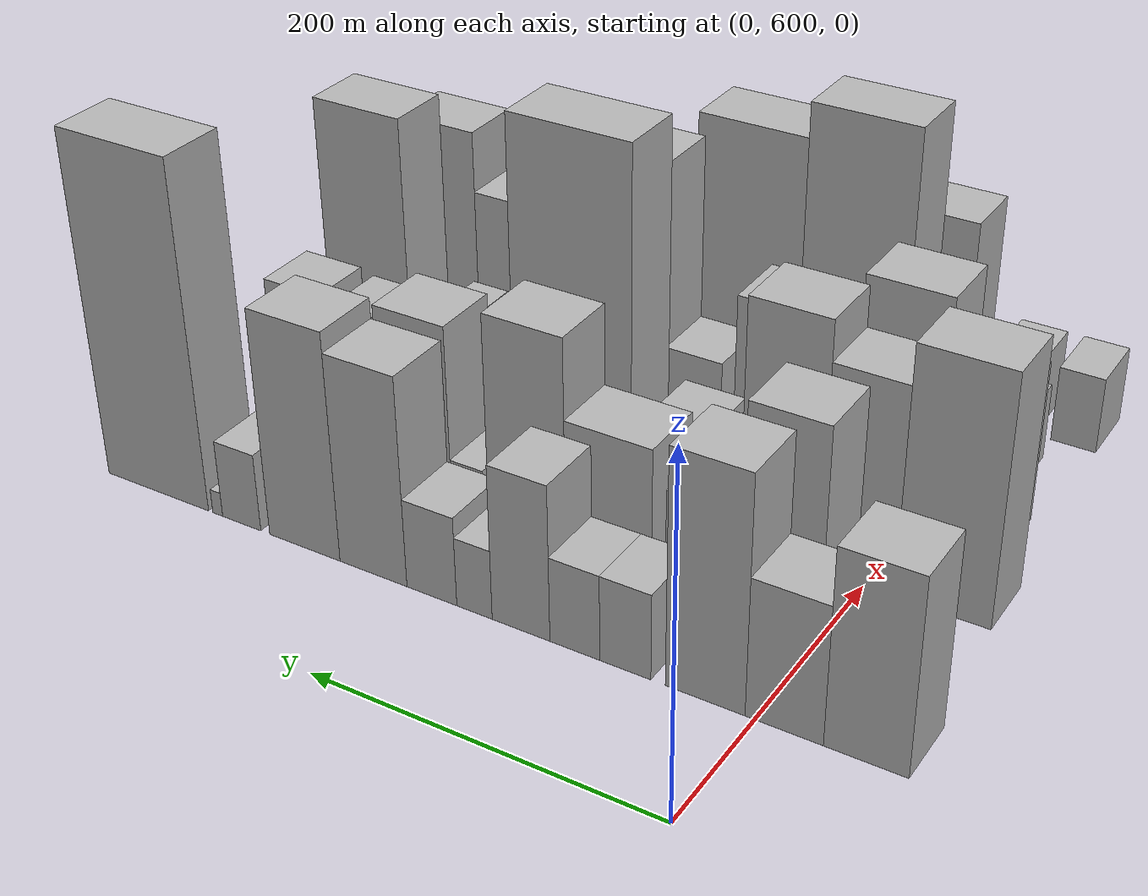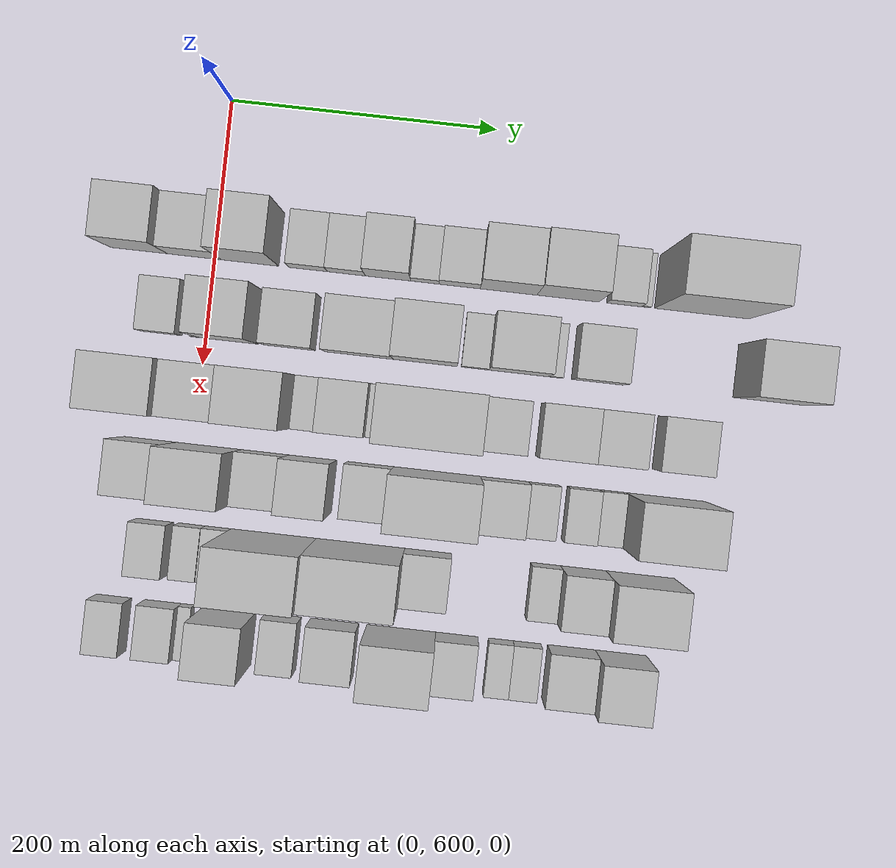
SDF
<sdf version="1.6">
 <world name="default">
  <model name="building_42">
   <static>1</static>
   <pose>100.0000 543.0667 0 0.000000 0.000000 0.000000</pose>
   <link name="link">
    <pose>0 0 57.00 0 0 0</pose>
    <collision name="collision"><geometry><box><size>40.0000 43.0736 114.0000</size></box></geometry></collision>
    <visual name="visual">
     <cast_shadows>0</cast_shadows>
     <geometry><box><size>40.0000 43.0736 114.0000</size></box></geometry>
     <material>
      <script>
       <uri>model://HANNAS_wall/materials/scripts</uri>
       <uri>model://HANNAS_wall/materials/textures</uri>
       <name>vrc/HANNAS_wall</name>
      </script>
     </material>
    </visual>
   </link>
  </model>
  <model name="building_43">
   <static>1</static>
   <pose>100.0000 584.9987 0 0.000000 0.000000 0.000000</pose>
   <link name="link">
    <pose>0 0 40.50 0 0 0</pose>
    <collision name="collision"><geometry><box><size>40.0000 40.7904 81.0000</size></box></geometry></collision>
    <visual name="visual">
     <cast_shadows>0</cast_shadows>
     <geometry><box><size>40.0000 40.7904 81.0000</size></box></geometry>
     <material>
      <script>
       <uri>model://HANNAS_wall/materials/scripts</uri>
       <uri>model://HANNAS_wall/materials/textures</uri>
       <name>vrc/HANNAS_wall</name>
      </script>
     </material>
    </visual>
   </link>
  </model>
  <model name="building_44">
   <static>1</static>
   <pose>100.0000 626.9853 0 0.000000 0.000000 0.000000</pose>
   <link name="link">
    <pose>0 0 69.00 0 0 0</pose>
    <collision name="collision"><geometry><box><size>40.0000 43.1828 138.0000</size></box></geometry></collision>
    <visual name="visual">
     <cast_shadows>0</cast_shadows>
     <geometry><box><size>40.0000 43.1828 138.0000</size></box></geometry>
     <material>
      <script>
       <uri>model://HANNAS_wall/materials/scripts</uri>
       <uri>model://HANNAS_wall/materials/textures</uri>
       <name>vrc/HANNAS_wall</name>
      </script>
     </material>
    </visual>
   </link>
  </model>
  <model name="building_45">
   <static>1</static>
   <pose>100.0000 670.9746 0 0.000000 0.000000 0.000000</pose>
   <link name="link">
    <pose>0 0 25.50 0 0 0</pose>
    <collision name="collision"><geometry><box><size>40.0000 28.7959 51.0000</size></box></geometry></collision>
    <visual name="visual">
     <cast_shadows>0</cast_shadows>
     <geometry><box><size>40.0000 28.7959 51.0000</size></box></geometry>
     <material>
      <script>
       <uri>model://HANNAS_wall/materials/scripts</uri>
       <uri>model://HANNAS_wall/materials/textures</uri>
       <name>vrc/HANNAS_wall</name>
      </script>
     </material>
    </visual>
   </link>
  </model>
  <model name="building_46">
   <static>1</static>
   <pose>100.0000 699.7390 0 0.000000 0.000000 0.000000</pose>
   <link name="link">
    <pose>0 0 25.50 0 0 0</pose>
    <collision name="collision"><geometry><box><size>40.0000 28.7329 51.0000</size></box></geometry></collision>
    <visual name="visual">
     <cast_shadows>0</cast_shadows>
     <geometry><box><size>40.0000 28.7329 51.0000</size></box></geometry>
     <material>
      <script>
       <uri>model://HANNAS_wall/materials/scripts</uri>
       <uri>model://HANNAS_wall/materials/textures</uri>
       <name>vrc/HANNAS_wall</name>
      </script>
     </material>
    </visual>
   </link>
  </model>
  <model name="building_47">
   <static>1</static>
   <pose>100.0000 731.2139 0 0.000000 0.000000 0.000000</pose>
   <link name="link">
    <pose>0 0 46.50 0 0 0</pose>
    <collision name="collision"><geometry><box><size>40.0000 34.2169 93.0000</size></box></geometry></collision>
    <visual name="visual">
     <cast_shadows>0</cast_shadows>
     <geometry><box><size>40.0000 34.2169 93.0000</size></box></geometry>
     <material>
      <script>
       <uri>model://HANNAS_wall/materials/scripts</uri>
       <uri>model://HANNAS_wall/materials/textures</uri>
       <name>vrc/HANNAS_wall</name>
      </script>
     </material>
    </visual>
   </link>
  </model>
  <model name="building_48">
   <static>1</static>
   <pose>100.0000 759.0580 0 0.000000 0.000000 0.000000</pose>
   <link name="link">
    <pose>0 0 21.00 0 0 0</pose>
    <collision name="collision"><geometry><box><size>40.0000 21.4712 42.0000</size></box></geometry></collision>
    <visual name="visual">
     <cast_shadows>0</cast_shadows>
     <geometry><box><size>40.0000 21.4712 42.0000</size></box></geometry>
     <material>
      <script>
       <uri>model://HANNAS_wall/materials/scripts</uri>
       <uri>model://HANNAS_wall/materials/textures</uri>
       <name>vrc/HANNAS_wall</name>
      </script>
     </material>
    </visual>
   </link>
  </model>
  <model name="building_49">
   <static>1</static>
   <pose>100.0000 785.2733 0 0.000000 0.000000 0.000000</pose>
   <link name="link">
    <pose>0 0 27.00 0 0 0</pose>
    <collision name="collision"><geometry><box><size>40.0000 30.9595 54.0000</size></box></geometry></collision>
    <visual name="visual">
     <cast_shadows>0</cast_shadows>
     <geometry><box><size>40.0000 30.9595 54.0000</size></box></geometry>
     <material>
      <script>
       <uri>model://HANNAS_wall/materials/scripts</uri>
       <uri>model://HANNAS_wall/materials/textures</uri>
       <name>vrc/HANNAS_wall</name>
      </script>
     </material>
    </visual>
   </link>
  </model>
  <model name="building_50">
   <static>1</static>
   <pose>100.0000 822.1790 0 0.000000 0.000000 0.000000</pose>
   <link name="link">
    <pose>0 0 63.00 0 0 0</pose>
    <collision name="collision"><geometry><box><size>40.0000 42.8519 126.0000</size></box></geometry></collision>
    <visual name="visual">
     <cast_shadows>0</cast_shadows>
     <geometry><box><size>40.0000 42.8519 126.0000</size></box></geometry>
     <material>
      <script>
       <uri>model://HANNAS_wall/materials/scripts</uri>
       <uri>model://HANNAS_wall/materials/textures</uri>
       <name>vrc/HANNAS_wall</name>
      </script>
     </material>
    </visual>
   </link>
  </model>
  <model name="building_51">
   <static>1</static>
   <pose>100.0000 866.9608 0 0.000000 0.000000 0.000000</pose>
   <link name="link">
    <pose>0 0 69.00 0 0 0</pose>
    <collision name="collision"><geometry><box><size>40.0000 46.7116 138.0000</size></box></geometry></collision>
    <visual name="visual">
     <cast_shadows>0</cast_shadows>
     <geometry><box><size>40.0000 46.7116 138.0000</size></box></geometry>
     <material>
      <script>
       <uri>model://HANNAS_wall/materials/scripts</uri>
       <uri>model://HANNAS_wall/materials/textures</uri>
       <name>vrc/HANNAS_wall</name>
      </script>
     </material>
    </visual>
   </link>
  </model>
  <model name="building_52">
   <static>1</static>
   <pose>100.0000 909.4379 0 0.000000 0.000000 0.000000</pose>
   <link name="link">
    <pose>0 0 24.00 0 0 0</pose>
    <collision name="collision"><geometry><box><size>40.0000 26.2428 48.0000</size></box></geometry></collision>
    <visual name="visual">
     <cast_shadows>0</cast_shadows>
     <geometry><box><size>40.0000 26.2428 48.0000</size></box></geometry>
     <material>
      <script>
       <uri>model://HANNAS_wall/materials/scripts</uri>
       <uri>model://HANNAS_wall/materials/textures</uri>
       <name>vrc/HANNAS_wall</name>
      </script>
     </material>
    </visual>
   </link>
  </model>
  <model name="building_53">
   <static>1</static>
   <pose>100.0000 925.9693 0 0.000000 0.000000 0.000000</pose>
   <link name="link">
    <pose>0 0 7.50 0 0 0</pose>
    <collision name="collision"><geometry><box><size>40.0000 6.8199 15.0000</size></box></geometry></collision>
    <visual name="visual">
     <cast_shadows>0</cast_shadows>
     <geometry><box><size>40.0000 6.8199 15.0000</size></box></geometry>
     <material>
      <script>
       <uri>model://HANNAS_wall/materials/scripts</uri>
       <uri>model://HANNAS_wall/materials/textures</uri>
       <name>vrc/HANNAS_wall</name>
      </script>
     </material>
    </visual>
   </link>
  </model>
  <model name="building_54">
   <static>1</static>
   <pose>100.0000 968.1452 0 0.000000 0.000000 0.000000</pose>
   <link name="link">
    <pose>0 0 105.00 0 0 0</pose>
    <collision name="collision"><geometry><box><size>40.0000 71.5319 210.0000</size></box></geometry></collision>
    <visual name="visual">
     <cast_shadows>0</cast_shadows>
     <geometry><box><size>40.0000 71.5319 210.0000</size></box></geometry>
     <material>
      <script>
       <uri>model://HANNAS_wall/materials/scripts</uri>
       <uri>model://HANNAS_wall/materials/textures</uri>
       <name>vrc/HANNAS_wall</name>
      </script>
     </material>
    </visual>
   </link>
  </model>
  <model name="building_101">
   <static>1</static>
   <pose>160.0000 567.4857 0 0.000000 0.000000 0.000000</pose>
   <link name="link">
    <pose>0 0 25.50 0 0 0</pose>
    <collision name="collision"><geometry><box><size>40.0000 29.9736 51.0000</size></box></geometry></collision>
    <visual name="visual">
     <cast_shadows>0</cast_shadows>
     <geometry><box><size>40.0000 29.9736 51.0000</size></box></geometry>
     <material>
      <script>
       <uri>model://HANNAS_wall/materials/scripts</uri>
       <uri>model://HANNAS_wall/materials/textures</uri>
       <name>vrc/HANNAS_wall</name>
      </script>
     </material>
    </visual>
   </link>
  </model>
  <model name="building_102">
   <static>1</static>
   <pose>160.0000 592.8338 0 0.000000 0.000000 0.000000</pose>
   <link name="link">
    <pose>0 0 7.50 0 0 0</pose>
    <collision name="collision"><geometry><box><size>40.0000 6.7226 15.0000</size></box></geometry></collision>
    <visual name="visual">
     <cast_shadows>0</cast_shadows>
     <geometry><box><size>40.0000 6.7226 15.0000</size></box></geometry>
     <material>
      <script>
       <uri>model://HANNAS_wall/materials/scripts</uri>
       <uri>model://HANNAS_wall/materials/textures</uri>
       <name>vrc/HANNAS_wall</name>
      </script>
     </material>
    </visual>
   </link>
  </model>
  <model name="building_103">
   <static>1</static>
   <pose>160.0000 618.1269 0 0.000000 0.000000 0.000000</pose>
   <link name="link">
    <pose>0 0 66.00 0 0 0</pose>
    <collision name="collision"><geometry><box><size>40.0000 43.8638 132.0000</size></box></geometry></collision>
    <visual name="visual">
     <cast_shadows>0</cast_shadows>
     <geometry><box><size>40.0000 43.8638 132.0000</size></box></geometry>
     <material>
      <script>
       <uri>model://HANNAS_wall/materials/scripts</uri>
       <uri>model://HANNAS_wall/materials/textures</uri>
       <name>vrc/HANNAS_wall</name>
      </script>
     </material>
    </visual>
   </link>
  </model>
  <model name="building_104">
   <static>1</static>
   <pose>160.0000 663.4706 0 0.000000 0.000000 0.000000</pose>
   <link name="link">
    <pose>0 0 33.00 0 0 0</pose>
    <collision name="collision"><geometry><box><size>40.0000 38.8237 66.0000</size></box></geometry></collision>
    <visual name="visual">
     <cast_shadows>0</cast_shadows>
     <geometry><box><size>40.0000 38.8237 66.0000</size></box></geometry>
     <material>
      <script>
       <uri>model://HANNAS_wall/materials/scripts</uri>
       <uri>model://HANNAS_wall/materials/textures</uri>
       <name>vrc/HANNAS_wall</name>
      </script>
     </material>
    </visual>
   </link>
  </model>
  <model name="building_105">
   <static>1</static>
   <pose>160.0000 716.5705 0 0.000000 0.000000 0.000000</pose>
   <link name="link">
    <pose>0 0 43.50 0 0 0</pose>
    <collision name="collision"><geometry><box><size>40.0000 51.3761 87.0000</size></box></geometry></collision>
    <visual name="visual">
     <cast_shadows>0</cast_shadows>
     <geometry><box><size>40.0000 51.3761 87.0000</size></box></geometry>
     <material>
      <script>
       <uri>model://HANNAS_wall/materials/scripts</uri>
       <uri>model://HANNAS_wall/materials/textures</uri>
       <name>vrc/HANNAS_wall</name>
      </script>
     </material>
    </visual>
   </link>
  </model>
  <model name="building_106">
   <static>1</static>
   <pose>160.0000 766.1731 0 0.000000 0.000000 0.000000</pose>
   <link name="link">
    <pose>0 0 67.50 0 0 0</pose>
    <collision name="collision"><geometry><box><size>40.0000 47.8291 135.0000</size></box></geometry></collision>
    <visual name="visual">
     <cast_shadows>0</cast_shadows>
     <geometry><box><size>40.0000 47.8291 135.0000</size></box></geometry>
     <material>
      <script>
       <uri>model://HANNAS_wall/materials/scripts</uri>
       <uri>model://HANNAS_wall/materials/textures</uri>
       <name>vrc/HANNAS_wall</name>
      </script>
     </material>
    </visual>
   </link>
  </model>
  <model name="building_107">
   <static>1</static>
   <pose>160.0000 803.4157 0 0.000000 0.000000 0.000000</pose>
   <link name="link">
    <pose>0 0 19.50 0 0 0</pose>
    <collision name="collision"><geometry><box><size>40.0000 20.6560 39.0000</size></box></geometry></collision>
    <visual name="visual">
     <cast_shadows>0</cast_shadows>
     <geometry><box><size>40.0000 20.6560 39.0000</size></box></geometry>
     <material>
      <script>
       <uri>model://HANNAS_wall/materials/scripts</uri>
       <uri>model://HANNAS_wall/materials/textures</uri>
       <name>vrc/HANNAS_wall</name>
      </script>
     </material>
    </visual>
   </link>
  </model>
  <model name="building_108">
   <static>1</static>
   <pose>160.0000 836.0244 0 0.000000 0.000000 0.000000</pose>
   <link name="link">
    <pose>0 0 60.00 0 0 0</pose>
    <collision name="collision"><geometry><box><size>40.0000 44.5614 120.0000</size></box></geometry></collision>
    <visual name="visual">
     <cast_shadows>0</cast_shadows>
     <geometry><box><size>40.0000 44.5614 120.0000</size></box></geometry>
     <material>
      <script>
       <uri>model://HANNAS_wall/materials/scripts</uri>
       <uri>model://HANNAS_wall/materials/textures</uri>
       <name>vrc/HANNAS_wall</name>
      </script>
     </material>
    </visual>
   </link>
  </model>
  <model name="building_109">
   <static>1</static>
   <pose>160.0000 863.7931 0 0.000000 0.000000 0.000000</pose>
   <link name="link">
    <pose>0 0 13.50 0 0 0</pose>
    <collision name="collision"><geometry><box><size>40.0000 10.9760 27.0000</size></box></geometry></collision>
    <visual name="visual">
     <cast_shadows>0</cast_shadows>
     <geometry><box><size>40.0000 10.9760 27.0000</size></box></geometry>
     <material>
      <script>
       <uri>model://HANNAS_wall/materials/scripts</uri>
       <uri>model://HANNAS_wall/materials/textures</uri>
       <name>vrc/HANNAS_wall</name>
      </script>
     </material>
    </visual>
   </link>
  </model>
  <model name="building_110">
   <static>1</static>
   <pose>160.0000 895.8413 0 0.000000 0.000000 0.000000</pose>
   <link name="link">
    <pose>0 0 36.00 0 0 0</pose>
    <collision name="collision"><geometry><box><size>40.0000 39.1203 72.0000</size></box></geometry></collision>
    <visual name="visual">
     <cast_shadows>0</cast_shadows>
     <geometry><box><size>40.0000 39.1203 72.0000</size></box></geometry>
     <material>
      <script>
       <uri>model://HANNAS_wall/materials/scripts</uri>
       <uri>model://HANNAS_wall/materials/textures</uri>
       <name>vrc/HANNAS_wall</name>
      </script>
     </material>
    </visual>
   </link>
  </model>
  <model name="building_111">
   <static>1</static>
   <pose>160.0000 1023.8019 0 0.000000 0.000000 0.000000</pose>
   <link name="link">
    <pose>0 0 70.50 0 0 0</pose>
    <collision name="collision"><geometry><box><size>40.0000 50.9337 141.0000</size></box></geometry></collision>
    <visual name="visual">
     <cast_shadows>0</cast_shadows>
     <geometry><box><size>40.0000 50.9337 141.0000</size></box></geometry>
     <material>
      <script>
       <uri>model://HANNAS_wall/materials/scripts</uri>
       <uri>model://HANNAS_wall/materials/textures</uri>
       <name>vrc/HANNAS_wall</name>
      </script>
     </material>
    </visual>
   </link>
  </model>
  <model name="building_156">
   <static>1</static>
   <pose>220.0000 556.6716 0 0.000000 0.000000 0.000000</pose>
   <link name="link">
    <pose>0 0 75.00 0 0 0</pose>
    <collision name="collision"><geometry><box><size>40.0000 52.7930 150.0000</size></box></geometry></collision>
    <visual name="visual">
     <cast_shadows>0</cast_shadows>
     <geometry><box><size>40.0000 52.7930 150.0000</size></box></geometry>
     <material>
      <script>
       <uri>model://HANNAS_wall/materials/scripts</uri>
       <uri>model://HANNAS_wall/materials/textures</uri>
       <name>vrc/HANNAS_wall</name>
      </script>
     </material>
    </visual>
   </link>
  </model>
  <model name="building_157">
   <static>1</static>
   <pose>220.0000 604.1203 0 0.000000 0.000000 0.000000</pose>
   <link name="link">
    <pose>0 0 63.00 0 0 0</pose>
    <collision name="collision"><geometry><box><size>40.0000 42.1045 126.0000</size></box></geometry></collision>
    <visual name="visual">
     <cast_shadows>0</cast_shadows>
     <geometry><box><size>40.0000 42.1045 126.0000</size></box></geometry>
     <material>
      <script>
       <uri>model://HANNAS_wall/materials/scripts</uri>
       <uri>model://HANNAS_wall/materials/textures</uri>
       <name>vrc/HANNAS_wall</name>
      </script>
     </material>
    </visual>
   </link>
  </model>
  <model name="building_158">
   <static>1</static>
   <pose>220.0000 648.6681 0 0.000000 0.000000 0.000000</pose>
   <link name="link">
    <pose>0 0 75.00 0 0 0</pose>
    <collision name="collision"><geometry><box><size>40.0000 46.9909 150.0000</size></box></geometry></collision>
    <visual name="visual">
     <cast_shadows>0</cast_shadows>
     <geometry><box><size>40.0000 46.9909 150.0000</size></box></geometry>
     <material>
      <script>
       <uri>model://HANNAS_wall/materials/scripts</uri>
       <uri>model://HANNAS_wall/materials/textures</uri>
       <name>vrc/HANNAS_wall</name>
      </script>
     </material>
    </visual>
   </link>
  </model>
  <model name="building_159">
   <static>1</static>
   <pose>220.0000 681.7142 0 0.000000 0.000000 0.000000</pose>
   <link name="link">
    <pose>0 0 18.00 0 0 0</pose>
    <collision name="collision"><geometry><box><size>40.0000 19.1013 36.0000</size></box></geometry></collision>
    <visual name="visual">
     <cast_shadows>0</cast_shadows>
     <geometry><box><size>40.0000 19.1013 36.0000</size></box></geometry>
     <material>
      <script>
       <uri>model://HANNAS_wall/materials/scripts</uri>
       <uri>model://HANNAS_wall/materials/textures</uri>
       <name>vrc/HANNAS_wall</name>
      </script>
     </material>
    </visual>
   </link>
  </model>
  <model name="building_160">
   <static>1</static>
   <pose>220.0000 709.5072 0 0.000000 0.000000 0.000000</pose>
   <link name="link">
    <pose>0 0 31.50 0 0 0</pose>
    <collision name="collision"><geometry><box><size>40.0000 36.4847 63.0000</size></box></geometry></collision>
    <visual name="visual">
     <cast_shadows>0</cast_shadows>
     <geometry><box><size>40.0000 36.4847 63.0000</size></box></geometry>
     <material>
      <script>
       <uri>model://HANNAS_wall/materials/scripts</uri>
       <uri>model://HANNAS_wall/materials/textures</uri>
       <name>vrc/HANNAS_wall</name>
      </script>
     </material>
    </visual>
   </link>
  </model>
  <model name="building_161">
   <static>1</static>
   <pose>220.0000 733.0010 0 0.000000 0.000000 0.000000</pose>
   <link name="link">
    <pose>0 0 12.00 0 0 0</pose>
    <collision name="collision"><geometry><box><size>40.0000 10.5028 24.0000</size></box></geometry></collision>
    <visual name="visual">
     <cast_shadows>0</cast_shadows>
     <geometry><box><size>40.0000 10.5028 24.0000</size></box></geometry>
     <material>
      <script>
       <uri>model://HANNAS_wall/materials/scripts</uri>
       <uri>model://HANNAS_wall/materials/textures</uri>
       <name>vrc/HANNAS_wall</name>
      </script>
     </material>
    </visual>
   </link>
  </model>
  <model name="building_162">
   <static>1</static>
   <pose>220.0000 775.4668 0 0.000000 0.000000 0.000000</pose>
   <link name="link">
    <pose>0 0 108.00 0 0 0</pose>
    <collision name="collision"><geometry><box><size>40.0000 74.4288 216.0000</size></box></geometry></collision>
    <visual name="visual">
     <cast_shadows>0</cast_shadows>
     <geometry><box><size>40.0000 74.4288 216.0000</size></box></geometry>
     <material>
      <script>
       <uri>model://HANNAS_wall/materials/scripts</uri>
       <uri>model://HANNAS_wall/materials/textures</uri>
       <name>vrc/HANNAS_wall</name>
      </script>
     </material>
    </visual>
   </link>
  </model>
  <model name="building_163">
   <static>1</static>
   <pose>220.0000 830.3093 0 0.000000 0.000000 0.000000</pose>
   <link name="link">
    <pose>0 0 30.00 0 0 0</pose>
    <collision name="collision"><geometry><box><size>40.0000 35.2562 60.0000</size></box></geometry></collision>
    <visual name="visual">
     <cast_shadows>0</cast_shadows>
     <geometry><box><size>40.0000 35.2562 60.0000</size></box></geometry>
     <material>
      <script>
       <uri>model://HANNAS_wall/materials/scripts</uri>
       <uri>model://HANNAS_wall/materials/textures</uri>
       <name>vrc/HANNAS_wall</name>
      </script>
     </material>
    </visual>
   </link>
  </model>
  <model name="building_164">
   <static>1</static>
   <pose>220.0000 877.0171 0 0.000000 0.000000 0.000000</pose>
   <link name="link">
    <pose>0 0 37.50 0 0 0</pose>
    <collision name="collision"><geometry><box><size>40.0000 42.1594 75.0000</size></box></geometry></collision>
    <visual name="visual">
     <cast_shadows>0</cast_shadows>
     <geometry><box><size>40.0000 42.1594 75.0000</size></box></geometry>
     <material>
      <script>
       <uri>model://HANNAS_wall/materials/scripts</uri>
       <uri>model://HANNAS_wall/materials/textures</uri>
       <name>vrc/HANNAS_wall</name>
      </script>
     </material>
    </visual>
   </link>
  </model>
  <model name="building_165">
   <static>1</static>
   <pose>220.0000 916.6066 0 0.000000 0.000000 0.000000</pose>
   <link name="link">
    <pose>0 0 34.50 0 0 0</pose>
    <collision name="collision"><geometry><box><size>40.0000 37.0196 69.0000</size></box></geometry></collision>
    <visual name="visual">
     <cast_shadows>0</cast_shadows>
     <geometry><box><size>40.0000 37.0196 69.0000</size></box></geometry>
     <material>
      <script>
       <uri>model://HANNAS_wall/materials/scripts</uri>
       <uri>model://HANNAS_wall/materials/textures</uri>
       <name>vrc/HANNAS_wall</name>
      </script>
     </material>
    </visual>
   </link>
  </model>
  <model name="building_166">
   <static>1</static>
   <pose>220.0000 963.9334 0 0.000000 0.000000 0.000000</pose>
   <link name="link">
    <pose>0 0 36.00 0 0 0</pose>
    <collision name="collision"><geometry><box><size>40.0000 39.6342 72.0000</size></box></geometry></collision>
    <visual name="visual">
     <cast_shadows>0</cast_shadows>
     <geometry><box><size>40.0000 39.6342 72.0000</size></box></geometry>
     <material>
      <script>
       <uri>model://HANNAS_wall/materials/scripts</uri>
       <uri>model://HANNAS_wall/materials/textures</uri>
       <name>vrc/HANNAS_wall</name>
      </script>
     </material>
    </visual>
   </link>
  </model>
  <model name="building_214">
   <static>1</static>
   <pose>280.0000 567.4271 0 0.000000 0.000000 0.000000</pose>
   <link name="link">
    <pose>0 0 49.50 0 0 0</pose>
    <collision name="collision"><geometry><box><size>40.0000 39.3766 99.0000</size></box></geometry></collision>
    <visual name="visual">
     <cast_shadows>0</cast_shadows>
     <geometry><box><size>40.0000 39.3766 99.0000</size></box></geometry>
     <material>
      <script>
       <uri>model://HANNAS_wall/materials/scripts</uri>
       <uri>model://HANNAS_wall/materials/textures</uri>
       <name>vrc/HANNAS_wall</name>
      </script>
     </material>
    </visual>
   </link>
  </model>
  <model name="building_215">
   <static>1</static>
   <pose>280.0000 611.7006 0 0.000000 0.000000 0.000000</pose>
   <link name="link">
    <pose>0 0 72.00 0 0 0</pose>
    <collision name="collision"><geometry><box><size>40.0000 49.1704 144.0000</size></box></geometry></collision>
    <visual name="visual">
     <cast_shadows>0</cast_shadows>
     <geometry><box><size>40.0000 49.1704 144.0000</size></box></geometry>
     <material>
      <script>
       <uri>model://HANNAS_wall/materials/scripts</uri>
       <uri>model://HANNAS_wall/materials/textures</uri>
       <name>vrc/HANNAS_wall</name>
      </script>
     </material>
    </visual>
   </link>
  </model>
  <model name="building_216">
   <static>1</static>
   <pose>280.0000 654.1823 0 0.000000 0.000000 0.000000</pose>
   <link name="link">
    <pose>0 0 33.00 0 0 0</pose>
    <collision name="collision"><geometry><box><size>40.0000 35.7930 66.0000</size></box></geometry></collision>
    <visual name="visual">
     <cast_shadows>0</cast_shadows>
     <geometry><box><size>40.0000 35.7930 66.0000</size></box></geometry>
     <material>
      <script>
       <uri>model://HANNAS_wall/materials/scripts</uri>
       <uri>model://HANNAS_wall/materials/textures</uri>
       <name>vrc/HANNAS_wall</name>
      </script>
     </material>
    </visual>
   </link>
  </model>
  <model name="building_217">
   <static>1</static>
   <pose>280.0000 690.1844 0 0.000000 0.000000 0.000000</pose>
   <link name="link">
    <pose>0 0 55.50 0 0 0</pose>
    <collision name="collision"><geometry><box><size>40.0000 36.2111 111.0000</size></box></geometry></collision>
    <visual name="visual">
     <cast_shadows>0</cast_shadows>
     <geometry><box><size>40.0000 36.2111 111.0000</size></box></geometry>
     <material>
      <script>
       <uri>model://HANNAS_wall/materials/scripts</uri>
       <uri>model://HANNAS_wall/materials/textures</uri>
       <name>vrc/HANNAS_wall</name>
      </script>
     </material>
    </visual>
   </link>
  </model>
  <model name="building_218">
   <static>1</static>
   <pose>280.0000 733.7836 0 0.000000 0.000000 0.000000</pose>
   <link name="link">
    <pose>0 0 33.00 0 0 0</pose>
    <collision name="collision"><geometry><box><size>40.0000 34.9873 66.0000</size></box></geometry></collision>
    <visual name="visual">
     <cast_shadows>0</cast_shadows>
     <geometry><box><size>40.0000 34.9873 66.0000</size></box></geometry>
     <material>
      <script>
       <uri>model://HANNAS_wall/materials/scripts</uri>
       <uri>model://HANNAS_wall/materials/textures</uri>
       <name>vrc/HANNAS_wall</name>
      </script>
     </material>
    </visual>
   </link>
  </model>
  <model name="building_219">
   <static>1</static>
   <pose>280.0000 783.9139 0 0.000000 0.000000 0.000000</pose>
   <link name="link">
    <pose>0 0 88.50 0 0 0</pose>
    <collision name="collision"><geometry><box><size>40.0000 65.2733 177.0000</size></box></geometry></collision>
    <visual name="visual">
     <cast_shadows>0</cast_shadows>
     <geometry><box><size>40.0000 65.2733 177.0000</size></box></geometry>
     <material>
      <script>
       <uri>model://HANNAS_wall/materials/scripts</uri>
       <uri>model://HANNAS_wall/materials/textures</uri>
       <name>vrc/HANNAS_wall</name>
      </script>
     </material>
    </visual>
   </link>
  </model>
  <model name="building_220">
   <static>1</static>
   <pose>280.0000 834.7248 0 0.000000 0.000000 0.000000</pose>
   <link name="link">
    <pose>0 0 34.50 0 0 0</pose>
    <collision name="collision"><geometry><box><size>40.0000 36.3485 69.0000</size></box></geometry></collision>
    <visual name="visual">
     <cast_shadows>0</cast_shadows>
     <geometry><box><size>40.0000 36.3485 69.0000</size></box></geometry>
     <material>
      <script>
       <uri>model://HANNAS_wall/materials/scripts</uri>
       <uri>model://HANNAS_wall/materials/textures</uri>
       <name>vrc/HANNAS_wall</name>
      </script>
     </material>
    </visual>
   </link>
  </model>
  <model name="building_221">
   <static>1</static>
   <pose>280.0000 864.4999 0 0.000000 0.000000 0.000000</pose>
   <link name="link">
    <pose>0 0 21.00 0 0 0</pose>
    <collision name="collision"><geometry><box><size>40.0000 23.2016 42.0000</size></box></geometry></collision>
    <visual name="visual">
     <cast_shadows>0</cast_shadows>
     <geometry><box><size>40.0000 23.2016 42.0000</size></box></geometry>
     <material>
      <script>
       <uri>model://HANNAS_wall/materials/scripts</uri>
       <uri>model://HANNAS_wall/materials/textures</uri>
       <name>vrc/HANNAS_wall</name>
      </script>
     </material>
    </visual>
   </link>
  </model>
  <model name="building_222">
   <static>1</static>
   <pose>280.0000 894.3371 0 0.000000 0.000000 0.000000</pose>
   <link name="link">
    <pose>0 0 22.50 0 0 0</pose>
    <collision name="collision"><geometry><box><size>40.0000 24.4728 45.0000</size></box></geometry></collision>
    <visual name="visual">
     <cast_shadows>0</cast_shadows>
     <geometry><box><size>40.0000 24.4728 45.0000</size></box></geometry>
     <material>
      <script>
       <uri>model://HANNAS_wall/materials/scripts</uri>
       <uri>model://HANNAS_wall/materials/textures</uri>
       <name>vrc/HANNAS_wall</name>
      </script>
     </material>
    </visual>
   </link>
  </model>
  <model name="building_223">
   <static>1</static>
   <pose>280.0000 916.3788 0 0.000000 0.000000 0.000000</pose>
   <link name="link">
    <pose>0 0 16.50 0 0 0</pose>
    <collision name="collision"><geometry><box><size>40.0000 19.6106 33.0000</size></box></geometry></collision>
    <visual name="visual">
     <cast_shadows>0</cast_shadows>
     <geometry><box><size>40.0000 19.6106 33.0000</size></box></geometry>
     <material>
      <script>
       <uri>model://HANNAS_wall/materials/scripts</uri>
       <uri>model://HANNAS_wall/materials/textures</uri>
       <name>vrc/HANNAS_wall</name>
      </script>
     </material>
    </visual>
   </link>
  </model>
  <model name="building_224">
   <static>1</static>
   <pose>280.0000 956.2109 0 0.000000 0.000000 0.000000</pose>
   <link name="link">
    <pose>0 0 81.00 0 0 0</pose>
    <collision name="collision"><geometry><box><size>40.0000 60.0537 162.0000</size></box></geometry></collision>
    <visual name="visual">
     <cast_shadows>0</cast_shadows>
     <geometry><box><size>40.0000 60.0537 162.0000</size></box></geometry>
     <material>
      <script>
       <uri>model://HANNAS_wall/materials/scripts</uri>
       <uri>model://HANNAS_wall/materials/textures</uri>
       <name>vrc/HANNAS_wall</name>
      </script>
     </material>
    </visual>
   </link>
  </model>
  <model name="building_276">
   <static>1</static>
   <pose>340.0000 577.5527 0 0.000000 0.000000 0.000000</pose>
   <link name="link">
    <pose>0 0 24.00 0 0 0</pose>
    <collision name="collision"><geometry><box><size>40.0000 27.7401 48.0000</size></box></geometry></collision>
    <visual name="visual">
     <cast_shadows>0</cast_shadows>
     <geometry><box><size>40.0000 27.7401 48.0000</size></box></geometry>
     <material>
      <script>
       <uri>model://HANNAS_wall/materials/scripts</uri>
       <uri>model://HANNAS_wall/materials/textures</uri>
       <name>vrc/HANNAS_wall</name>
      </script>
     </material>
    </visual>
   </link>
  </model>
  <model name="building_277">
   <static>1</static>
   <pose>340.0000 605.5652 0 0.000000 0.000000 0.000000</pose>
   <link name="link">
    <pose>0 0 18.00 0 0 0</pose>
    <collision name="collision"><geometry><box><size>40.0000 20.2848 36.0000</size></box></geometry></collision>
    <visual name="visual">
     <cast_shadows>0</cast_shadows>
     <geometry><box><size>40.0000 20.2848 36.0000</size></box></geometry>
     <material>
      <script>
       <uri>model://HANNAS_wall/materials/scripts</uri>
       <uri>model://HANNAS_wall/materials/textures</uri>
       <name>vrc/HANNAS_wall</name>
      </script>
     </material>
    </visual>
   </link>
  </model>
  <model name="building_278">
   <static>1</static>
   <pose>340.0000 625.4072 0 0.000000 0.000000 0.000000</pose>
   <link name="link">
    <pose>0 0 16.50 0 0 0</pose>
    <collision name="collision"><geometry><box><size>40.0000 19.3990 33.0000</size></box></geometry></collision>
    <visual name="visual">
     <cast_shadows>0</cast_shadows>
     <geometry><box><size>40.0000 19.3990 33.0000</size></box></geometry>
     <material>
      <script>
       <uri>model://HANNAS_wall/materials/scripts</uri>
       <uri>model://HANNAS_wall/materials/textures</uri>
       <name>vrc/HANNAS_wall</name>
      </script>
     </material>
    </visual>
   </link>
  </model>
  <model name="building_279">
   <static>1</static>
   <pose>340.0000 667.3783 0 0.000000 0.000000 0.000000</pose>
   <link name="link">
    <pose>0 0 100.50 0 0 0</pose>
    <collision name="collision"><geometry><box><size>40.0000 64.5432 201.0000</size></box></geometry></collision>
    <visual name="visual">
     <cast_shadows>0</cast_shadows>
     <geometry><box><size>40.0000 64.5432 201.0000</size></box></geometry>
     <material>
      <script>
       <uri>model://HANNAS_wall/materials/scripts</uri>
       <uri>model://HANNAS_wall/materials/textures</uri>
       <name>vrc/HANNAS_wall</name>
      </script>
     </material>
    </visual>
   </link>
  </model>
  <model name="building_280">
   <static>1</static>
   <pose>340.0000 732.9792 0 0.000000 0.000000 0.000000</pose>
   <link name="link">
    <pose>0 0 90.00 0 0 0</pose>
    <collision name="collision"><geometry><box><size>40.0000 66.6586 180.0000</size></box></geometry></collision>
    <visual name="visual">
     <cast_shadows>0</cast_shadows>
     <geometry><box><size>40.0000 66.6586 180.0000</size></box></geometry>
     <material>
      <script>
       <uri>model://HANNAS_wall/materials/scripts</uri>
       <uri>model://HANNAS_wall/materials/textures</uri>
       <name>vrc/HANNAS_wall</name>
      </script>
     </material>
    </visual>
   </link>
  </model>
  <model name="building_281">
   <static>1</static>
   <pose>340.0000 783.9872 0 0.000000 0.000000 0.000000</pose>
   <link name="link">
    <pose>0 0 30.00 0 0 0</pose>
    <collision name="collision"><geometry><box><size>40.0000 35.3574 60.0000</size></box></geometry></collision>
    <visual name="visual">
     <cast_shadows>0</cast_shadows>
     <geometry><box><size>40.0000 35.3574 60.0000</size></box></geometry>
     <material>
      <script>
       <uri>model://HANNAS_wall/materials/scripts</uri>
       <uri>model://HANNAS_wall/materials/textures</uri>
       <name>vrc/HANNAS_wall</name>
      </script>
     </material>
    </visual>
   </link>
  </model>
  <model name="building_282">
   <static>1</static>
   <pose>340.0000 872.5083 0 0.000000 0.000000 0.000000</pose>
   <link name="link">
    <pose>0 0 21.00 0 0 0</pose>
    <collision name="collision"><geometry><box><size>40.0000 22.5616 42.0000</size></box></geometry></collision>
    <visual name="visual">
     <cast_shadows>0</cast_shadows>
     <geometry><box><size>40.0000 22.5616 42.0000</size></box></geometry>
     <material>
      <script>
       <uri>model://HANNAS_wall/materials/scripts</uri>
       <uri>model://HANNAS_wall/materials/textures</uri>
       <name>vrc/HANNAS_wall</name>
      </script>
     </material>
    </visual>
   </link>
  </model>
  <model name="building_283">
   <static>1</static>
   <pose>340.0000 900.8502 0 0.000000 0.000000 0.000000</pose>
   <link name="link">
    <pose>0 0 46.50 0 0 0</pose>
    <collision name="collision"><geometry><box><size>40.0000 34.1221 93.0000</size></box></geometry></collision>
    <visual name="visual">
     <cast_shadows>0</cast_shadows>
     <geometry><box><size>40.0000 34.1221 93.0000</size></box></geometry>
     <material>
      <script>
       <uri>model://HANNAS_wall/materials/scripts</uri>
       <uri>model://HANNAS_wall/materials/textures</uri>
       <name>vrc/HANNAS_wall</name>
      </script>
     </material>
    </visual>
   </link>
  </model>
  <model name="building_284">
   <static>1</static>
   <pose>340.0000 943.8617 0 0.000000 0.000000 0.000000</pose>
   <link name="link">
    <pose>0 0 66.00 0 0 0</pose>
    <collision name="collision"><geometry><box><size>40.0000 51.9009 132.0000</size></box></geometry></collision>
    <visual name="visual">
     <cast_shadows>0</cast_shadows>
     <geometry><box><size>40.0000 51.9009 132.0000</size></box></geometry>
     <material>
      <script>
       <uri>model://HANNAS_wall/materials/scripts</uri>
       <uri>model://HANNAS_wall/materials/textures</uri>
       <name>vrc/HANNAS_wall</name>
      </script>
     </material>
    </visual>
   </link>
  </model>
  <model name="building_324">
   <static>1</static>
   <pose>400.0000 553.2352 0 0.000000 0.000000 0.000000</pose>
   <link name="link">
    <pose>0 0 24.00 0 0 0</pose>
    <collision name="collision"><geometry><box><size>40.0000 26.6749 48.0000</size></box></geometry></collision>
    <visual name="visual">
     <cast_shadows>0</cast_shadows>
     <geometry><box><size>40.0000 26.6749 48.0000</size></box></geometry>
     <material>
      <script>
       <uri>model://HANNAS_wall/materials/scripts</uri>
       <uri>model://HANNAS_wall/materials/textures</uri>
       <name>vrc/HANNAS_wall</name>
      </script>
     </material>
    </visual>
   </link>
  </model>
  <model name="building_325">
   <static>1</static>
   <pose>400.0000 590.5028 0 0.000000 0.000000 0.000000</pose>
   <link name="link">
    <pose>0 0 24.00 0 0 0</pose>
    <collision name="collision"><geometry><box><size>40.0000 27.8604 48.0000</size></box></geometry></collision>
    <visual name="visual">
     <cast_shadows>0</cast_shadows>
     <geometry><box><size>40.0000 27.8604 48.0000</size></box></geometry>
     <material>
      <script>
       <uri>model://HANNAS_wall/materials/scripts</uri>
       <uri>model://HANNAS_wall/materials/textures</uri>
       <name>vrc/HANNAS_wall</name>
      </script>
     </material>
    </visual>
   </link>
  </model>
  <model name="building_326">
   <static>1</static>
   <pose>400.0000 609.3588 0 0.000000 0.000000 0.000000</pose>
   <link name="link">
    <pose>0 0 12.00 0 0 0</pose>
    <collision name="collision"><geometry><box><size>40.0000 9.8516 24.0000</size></box></geometry></collision>
    <visual name="visual">
     <cast_shadows>0</cast_shadows>
     <geometry><box><size>40.0000 9.8516 24.0000</size></box></geometry>
     <material>
      <script>
       <uri>model://HANNAS_wall/materials/scripts</uri>
       <uri>model://HANNAS_wall/materials/textures</uri>
       <name>vrc/HANNAS_wall</name>
      </script>
     </material>
    </visual>
   </link>
  </model>
  <model name="building_327">
   <static>1</static>
   <pose>400.0000 641.0989 0 0.000000 0.000000 0.000000</pose>
   <link name="link">
    <pose>0 0 61.50 0 0 0</pose>
    <collision name="collision"><geometry><box><size>40.0000 39.6286 123.0000</size></box></geometry></collision>
    <visual name="visual">
     <cast_shadows>0</cast_shadows>
     <geometry><box><size>40.0000 39.6286 123.0000</size></box></geometry>
     <material>
      <script>
       <uri>model://HANNAS_wall/materials/scripts</uri>
       <uri>model://HANNAS_wall/materials/textures</uri>
       <name>vrc/HANNAS_wall</name>
      </script>
     </material>
    </visual>
   </link>
  </model>
  <model name="building_328">
   <static>1</static>
   <pose>400.0000 681.4015 0 0.000000 0.000000 0.000000</pose>
   <link name="link">
    <pose>0 0 25.50 0 0 0</pose>
    <collision name="collision"><geometry><box><size>40.0000 26.9767 51.0000</size></box></geometry></collision>
    <visual name="visual">
     <cast_shadows>0</cast_shadows>
     <geometry><box><size>40.0000 26.9767 51.0000</size></box></geometry>
     <material>
      <script>
       <uri>model://HANNAS_wall/materials/scripts</uri>
       <uri>model://HANNAS_wall/materials/textures</uri>
       <name>vrc/HANNAS_wall</name>
      </script>
     </material>
    </visual>
   </link>
  </model>
  <model name="building_329">
   <static>1</static>
   <pose>400.0000 720.1115 0 0.000000 0.000000 0.000000</pose>
   <link name="link">
    <pose>0 0 33.00 0 0 0</pose>
    <collision name="collision"><geometry><box><size>40.0000 36.4432 66.0000</size></box></geometry></collision>
    <visual name="visual">
     <cast_shadows>0</cast_shadows>
     <geometry><box><size>40.0000 36.4432 66.0000</size></box></geometry>
     <material>
      <script>
       <uri>model://HANNAS_wall/materials/scripts</uri>
       <uri>model://HANNAS_wall/materials/textures</uri>
       <name>vrc/HANNAS_wall</name>
      </script>
     </material>
    </visual>
   </link>
  </model>
  <model name="building_330">
   <static>1</static>
   <pose>400.0000 770.1992 0 0.000000 0.000000 0.000000</pose>
   <link name="link">
    <pose>0 0 69.00 0 0 0</pose>
    <collision name="collision"><geometry><box><size>40.0000 51.7323 138.0000</size></box></geometry></collision>
    <visual name="visual">
     <cast_shadows>0</cast_shadows>
     <geometry><box><size>40.0000 51.7323 138.0000</size></box></geometry>
     <material>
      <script>
       <uri>model://HANNAS_wall/materials/scripts</uri>
       <uri>model://HANNAS_wall/materials/textures</uri>
       <name>vrc/HANNAS_wall</name>
      </script>
     </material>
    </visual>
   </link>
  </model>
  <model name="building_331">
   <static>1</static>
   <pose>400.0000 812.0207 0 0.000000 0.000000 0.000000</pose>
   <link name="link">
    <pose>0 0 31.50 0 0 0</pose>
    <collision name="collision"><geometry><box><size>40.0000 31.9107 63.0000</size></box></geometry></collision>
    <visual name="visual">
     <cast_shadows>0</cast_shadows>
     <geometry><box><size>40.0000 31.9107 63.0000</size></box></geometry>
     <material>
      <script>
       <uri>model://HANNAS_wall/materials/scripts</uri>
       <uri>model://HANNAS_wall/materials/textures</uri>
       <name>vrc/HANNAS_wall</name>
      </script>
     </material>
    </visual>
   </link>
  </model>
  <model name="building_332">
   <static>1</static>
   <pose>400.0000 845.3188 0 0.000000 0.000000 0.000000</pose>
   <link name="link">
    <pose>0 0 18.00 0 0 0</pose>
    <collision name="collision"><geometry><box><size>40.0000 18.6853 36.0000</size></box></geometry></collision>
    <visual name="visual">
     <cast_shadows>0</cast_shadows>
     <geometry><box><size>40.0000 18.6853 36.0000</size></box></geometry>
     <material>
      <script>
       <uri>model://HANNAS_wall/materials/scripts</uri>
       <uri>model://HANNAS_wall/materials/textures</uri>
       <name>vrc/HANNAS_wall</name>
      </script>
     </material>
    </visual>
   </link>
  </model>
  <model name="building_333">
   <static>1</static>
   <pose>400.0000 865.1641 0 0.000000 0.000000 0.000000</pose>
   <link name="link">
    <pose>0 0 18.00 0 0 0</pose>
    <collision name="collision"><geometry><box><size>40.0000 21.0054 36.0000</size></box></geometry></collision>
    <visual name="visual">
     <cast_shadows>0</cast_shadows>
     <geometry><box><size>40.0000 21.0054 36.0000</size></box></geometry>
     <material>
      <script>
       <uri>model://HANNAS_wall/materials/scripts</uri>
       <uri>model://HANNAS_wall/materials/textures</uri>
       <name>vrc/HANNAS_wall</name>
      </script>
     </material>
    </visual>
   </link>
  </model>
  <model name="building_334">
   <static>1</static>
   <pose>400.0000 898.7335 0 0.000000 0.000000 0.000000</pose>
   <link name="link">
    <pose>0 0 31.50 0 0 0</pose>
    <collision name="collision"><geometry><box><size>40.0000 36.1334 63.0000</size></box></geometry></collision>
    <visual name="visual">
     <cast_shadows>0</cast_shadows>
     <geometry><box><size>40.0000 36.1334 63.0000</size></box></geometry>
     <material>
      <script>
       <uri>model://HANNAS_wall/materials/scripts</uri>
       <uri>model://HANNAS_wall/materials/textures</uri>
       <name>vrc/HANNAS_wall</name>
      </script>
     </material>
    </visual>
   </link>
  </model>
  <model name="building_335">
   <static>1</static>
   <pose>400.0000 936.0496 0 0.000000 0.000000 0.000000</pose>
   <link name="link">
    <pose>0 0 49.50 0 0 0</pose>
    <collision name="collision"><geometry><box><size>40.0000 38.4986 99.0000</size></box></geometry></collision>
    <visual name="visual">
     <cast_shadows>0</cast_shadows>
     <geometry><box><size>40.0000 38.4986 99.0000</size></box></geometry>
     <material>
      <script>
       <uri>model://HANNAS_wall/materials/scripts</uri>
       <uri>model://HANNAS_wall/materials/textures</uri>
       <name>vrc/HANNAS_wall</name>
      </script>
     </material>
    </visual>
   </link>
  </model>
 </world>
</sdf>
